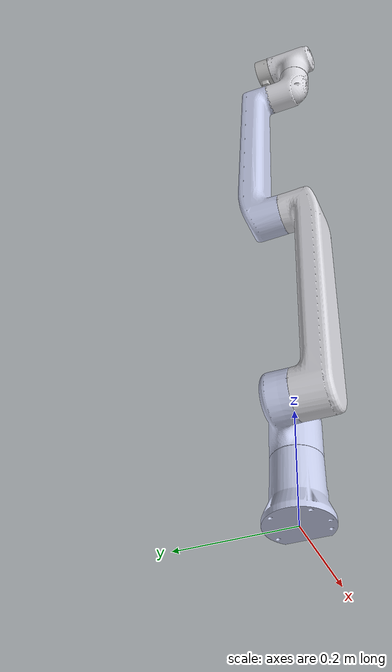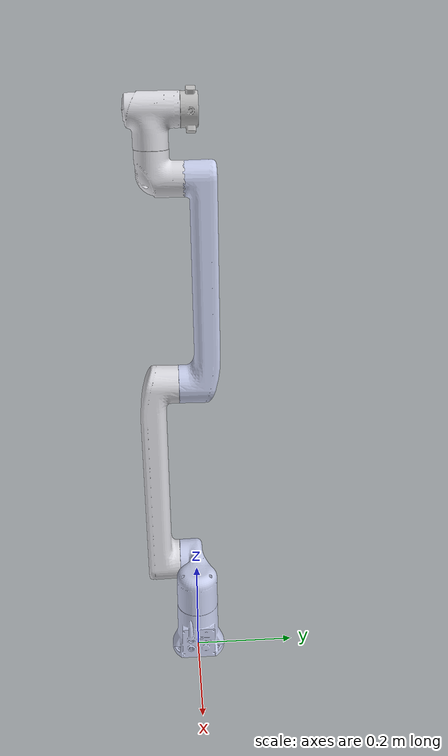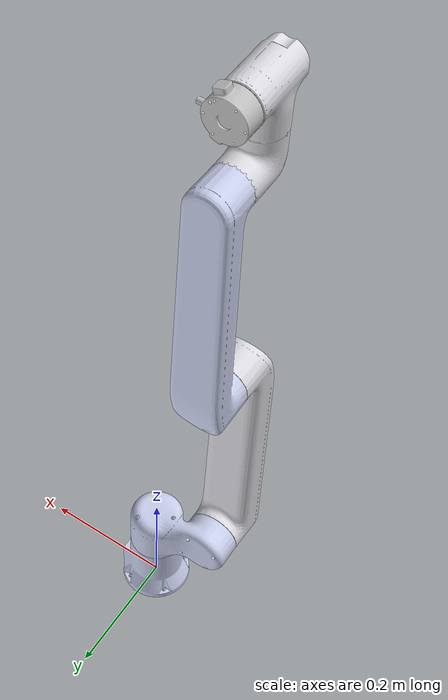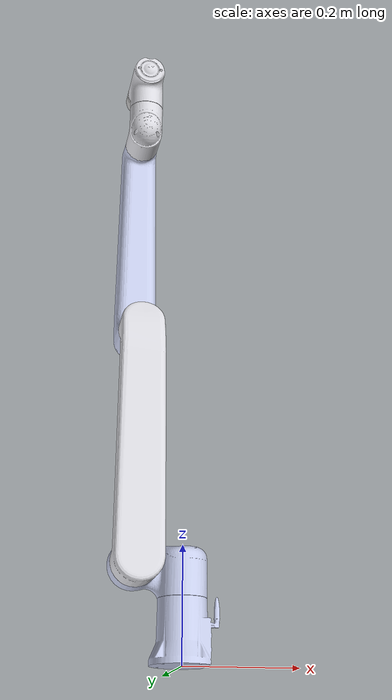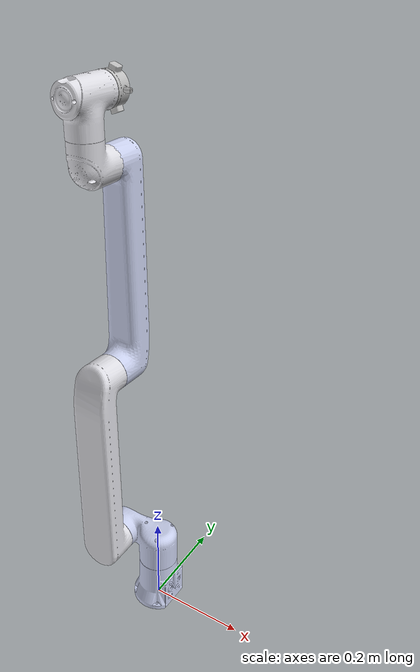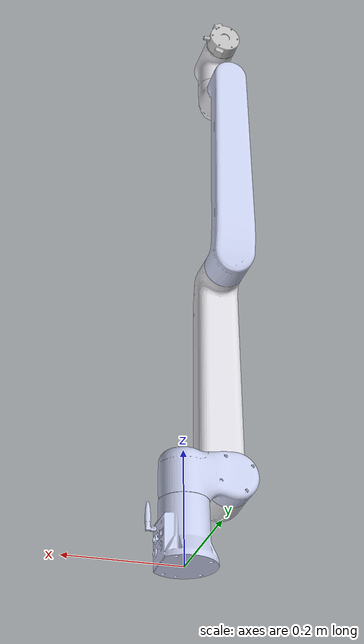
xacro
<?xml version="1.0" encoding="utf-8"?>
<robot  name="rm_eco63_description" xmlns:xacro="http://www.ros.org/wiki/xacro">
    <!-- link6_type -->
    <xacro:arg name="link6_type" default="Link6" />
    <!-- arg->property -->
    <xacro:property name="link6_type" value="$(arg link6_type)" />
    <link
    name="base_link">
    <inertial>
      <origin
        xyz="-0.0819699961303711 -0.0464753726622393 0.526722271495911"
        rpy="0 0 0" />
      <mass
        value="8.97974481667473" />
      <inertia
        ixx="0"
        ixy="0"
        ixz="0"
        iyy="0"
        iyz="0"
        izz="0" />
    </inertial>
    <visual>
      <origin
        xyz="0 0 0"
        rpy="0 0 0" />
      <geometry>
        <mesh
          filename="file://$(find rm_description)/meshes/rm_eco63_arm/base_link.STL" />
      </geometry>
      <material
        name="">
        <color
          rgba="0.792156862745098 0.819607843137255 0.933333333333333 1" />
      </material>
    </visual>
    <collision>
      <origin
        xyz="0 0 0"
        rpy="0 0 0" />
      <geometry>
        <mesh
          filename="file://$(find rm_description)/meshes/rm_eco63_arm/base_link.STL" />
      </geometry>
    </collision>
  </link>
  <link
    name="Link1">
    <inertial>
      <origin
        xyz="-0.0309493055609114 -0.0012728567226139 -0.00524336672353307"
        rpy="0 0 0" />
      <mass
        value="0.656374618338142" />
      <inertia
        ixx="0"
        ixy="0"
        ixz="0"
        iyy="0"
        iyz="0"
        izz="0" />
    </inertial>
    <visual>
      <origin
        xyz="0 0 0"
        rpy="0 0 0" />
      <geometry>
        <mesh
          filename="file://$(find rm_description)/meshes/rm_eco63_arm/Link1.STL" />
      </geometry>
      <material
        name="">
        <color
          rgba="0.792156862745098 0.819607843137255 0.933333333333333 1" />
      </material>
    </visual>
    <collision>
      <origin
        xyz="0 0 0"
        rpy="0 0 0" />
      <geometry>
        <mesh
          filename="file://$(find rm_description)/meshes/rm_eco63_arm/Link1.STL" />
      </geometry>
    </collision>
  </link>
  <joint
    name="joint1"
    type="revolute">
    <origin
      xyz="0 0 0.1625"
      rpy="0 0 0" />
    <parent
      link="base_link" />
    <child
      link="Link1" />
    <axis
      xyz="0 0 -1" />
    <limit
      lower="-3.105"
      upper="3.105"
      effort="60"
      velocity="3.14" />
  </joint>
  <link
    name="Link2">
    <inertial>
      <origin
        xyz="0.194682247033962 -1.86346038127949E-07 0.0708742731440949"
        rpy="0 0 0" />
      <mass
        value="5.26262523683375" />
      <inertia
        ixx="0"
        ixy="0"
        ixz="0"
        iyy="0"
        iyz="0"
        izz="0" />
    </inertial>
    <visual>
      <origin
        xyz="0 0 0"
        rpy="0 0 0" />
      <geometry>
        <mesh
          filename="file://$(find rm_description)/meshes/rm_eco63_arm/Link2.STL" />
      </geometry>
      <material
        name="">
        <color
          rgba="0.866666666666667 0.866666666666667 0.890196078431372 1" />
      </material>
    </visual>
    <collision>
      <origin
        xyz="0 0 0"
        rpy="0 0 0" />
      <geometry>
        <mesh
          filename="file://$(find rm_description)/meshes/rm_eco63_arm/Link2.STL" />
      </geometry>
    </collision>
  </link>
  <joint
    name="joint2"
    type="revolute">
    <origin
      xyz="-0.086 0 0"
      rpy="1.5708 -1.5708 0" />
    <parent
      link="Link1" />
    <child
      link="Link2" />
    <axis
      xyz="0 0 -1" />
    <limit
      lower="-3.105"
      upper="2.355"
      effort="60"
      velocity="3.14" />
  </joint>
  <link
    name="Link3">
    <inertial>
      <origin
        xyz="0.179310475039839 1.86928912626616E-09 0.0308638630867258"
        rpy="0 0 0" />
      <mass
        value="1.3509329667983" />
      <inertia
        ixx="0"
        ixy="0"
        ixz="0"
        iyy="0"
        iyz="0"
        izz="0" />
    </inertial>
    <visual>
      <origin
        xyz="0 0 0"
        rpy="0 0 0" />
      <geometry>
        <mesh
          filename="file://$(find rm_description)/meshes/rm_eco63_arm/Link3.STL" />
      </geometry>
      <material
        name="">
        <color
          rgba="0.792156862745098 0.819607843137255 0.933333333333333 1" />
      </material>
    </visual>
    <collision>
      <origin
        xyz="0 0 0"
        rpy="0 0 0" />
      <geometry>
        <mesh
          filename="file://$(find rm_description)/meshes/rm_eco63_arm/Link3.STL" />
      </geometry>
    </collision>
  </link>
  <joint
    name="joint3"
    type="revolute">
    <origin
      xyz="0.41 0 0"
      rpy="3.1416 -0.0087266 0" />
    <parent
      link="Link2" />
    <child
      link="Link3" />
    <axis
      xyz="-0.0087265 0 0.99996" />
    <limit
      lower="-2.93"
      upper="2.756"
      effort="30"
      velocity="3.14" />
  </joint>
  <link
    name="Link4">
    <inertial>
      <origin
        xyz="1.18737948139047E-06 -0.00995387687025817 0.0129236518197595"
        rpy="0 0 0" />
      <mass
        value="0.733001235394853" />
      <inertia
        ixx="0"
        ixy="0"
        ixz="0"
        iyy="0"
        iyz="0"
        izz="0" />
    </inertial>
    <visual>
      <origin
        xyz="0 0 0"
        rpy="0 0 0" />
      <geometry>
        <mesh
          filename="file://$(find rm_description)/meshes/rm_eco63_arm/Link4.STL" />
      </geometry>
      <material
        name="">
        <color
          rgba="0.866666666666667 0.866666666666667 0.890196078431372 1" />
      </material>
    </visual>
    <collision>
      <origin
        xyz="0 0 0"
        rpy="0 0 0" />
      <geometry>
        <mesh
          filename="file://$(find rm_description)/meshes/rm_eco63_arm/Link4.STL" />
      </geometry>
    </collision>
  </link>
  <joint
    name="joint4"
    type="revolute">
    <origin
      xyz="0.38049 0 -0.054981"
      rpy="-0.0087266 0 1.5708" />
    <parent
      link="Link3" />
    <child
      link="Link4" />
    <axis
      xyz="0 0 1" />
    <limit
      lower="-3.105"
      upper="3.105"
      effort="10"
      velocity="3.14" />
  </joint>
  <link
    name="Link5">
    <inertial>
      <origin
        xyz="1.10373835336686E-06 0.00366306859871773 -0.0136222948606266"
        rpy="0 0 0" />
      <mass
        value="0.911747774463918" />
      <inertia
        ixx="0"
        ixy="0"
        ixz="0"
        iyy="0"
        iyz="0"
        izz="0" />
    </inertial>
    <visual>
      <origin
        xyz="0 0 0"
        rpy="0 0 0" />
      <geometry>
        <mesh
          filename="file://$(find rm_description)/meshes/rm_eco63_arm/Link5.STL" />
      </geometry>
      <material
        name="">
        <color
          rgba="0.866666666666667 0.866666666666667 0.890196078431372 1" />
      </material>
    </visual>
    <collision>
      <origin
        xyz="0 0 0"
        rpy="0 0 0" />
      <geometry>
        <mesh
          filename="file://$(find rm_description)/meshes/rm_eco63_arm/Link5.STL" />
      </geometry>
    </collision>
  </link>
  <joint
    name="joint5"
    type="revolute">
    <origin
      xyz="0 -0.11 -0.0006"
      rpy="1.5708 0 0" />
    <parent
      link="Link4" />
    <child
      link="Link5" />
    <axis
      xyz="0 0 -1" />
    <limit
      lower="-3.105"
      upper="3.105"
      effort="10"
      velocity="3.14" />
  </joint>
    <xacro:if value="${ link6_type =='Link6' }">
        <link
    name="Link6">
    <inertial>
      <origin
        xyz="0.000922882083248047 -9.40199566012989E-05 -0.0127047090822767"
        rpy="0 0 0" />
        <mass
        value="0.065035417997418" />
      <inertia
        ixx="0"
        ixy="0"
        ixz="0"
        iyy="0"
        iyz="0"
        izz="0" />
    </inertial>
    <visual>
      <origin
        xyz="0 0 0"
        rpy="0 0 0" />
      <geometry>
        <mesh
          filename="file://$(find rm_description)/meshes/rm_eco63_arm/Link6.STL" />
      </geometry>
      <material
        name="">
        <color
          rgba="0.752941176470588 0.752941176470588 0.752941176470588 1" />
      </material>
    </visual>
    <collision>
      <origin
        xyz="0 0 0"
        rpy="0 0 0" />
      <geometry>
        <mesh
          filename="file://$(find rm_description)/meshes/rm_eco63_arm/Link6.STL" />
      </geometry>
    </collision>
  </link>
  <joint
    name="joint6"
    type="revolute">
    <origin
      xyz="-0.00010641 0.0797 -0.00010731"
      rpy="-1.5708 0 0" />
    <parent
      link="Link5" />
    <child
      link="Link6" />
    <axis
      xyz="0 0 -1" />
    <limit
      lower="-6.28"
      upper="6.28"
      effort="10"
      velocity="3.14" />
  </joint>
    </xacro:if>
    <xacro:if value="${ link6_type =='Link6_6fb' }">
      <link
    name="Link6">
    <inertial>
      <origin
        xyz="0.000502798417250983 1.40039216558474E-05 -0.0166588848846901"
        rpy="0 0 0" />
      <mass
        value="0.151764173288042" />
      <inertia
        ixx="0"
        ixy="0"
        ixz="0"
        iyy="0"
        iyz="0"
        izz="0" />
    </inertial>
    <visual>
      <origin
        xyz="0 0 0"
        rpy="0 0 0" />
      <geometry>
        <mesh
          filename="file://$(find rm_description)/meshes/rm_eco63_arm/Link6_6fb.STL" />
      </geometry>
      <material
        name="">
        <color
          rgba="0.866666666666667 0.866666666666667 0.890196078431372 1" />
      </material>
    </visual>
    <collision>
      <origin
        xyz="0 0 0"
        rpy="0 0 0" />
      <geometry>
        <mesh
          filename="file://$(find rm_description)/meshes/rm_eco63_arm/Link6_6fb.STL" />
      </geometry>
    </collision>
  </link>
  <joint
    name="joint6"
    type="revolute">
    <origin
      xyz="0 0.0967 0"
      rpy="-1.5708 0 0" />
    <parent
      link="Link5" />
    <child
      link="Link6" />
    <axis
      xyz="0 0 -1" />
    <limit
      lower="-6.28"
      upper="6.28"
      effort="10"
      velocity="3.14" />
  </joint>
    </xacro:if>
</robot>
